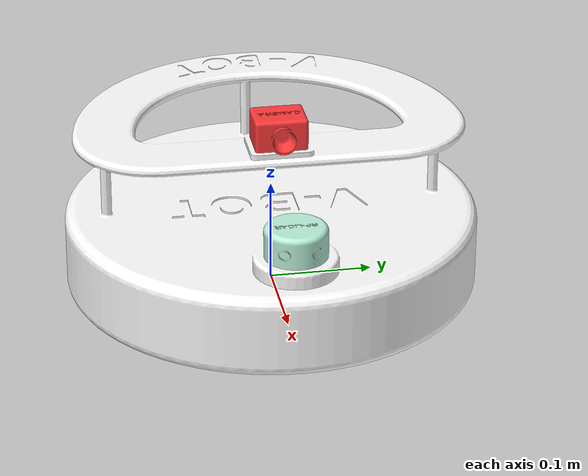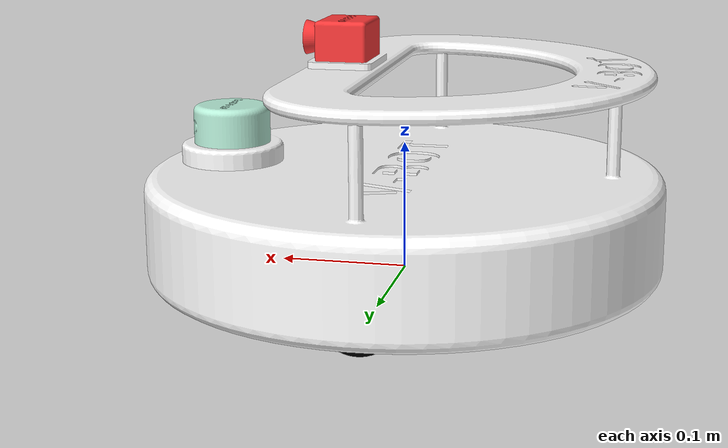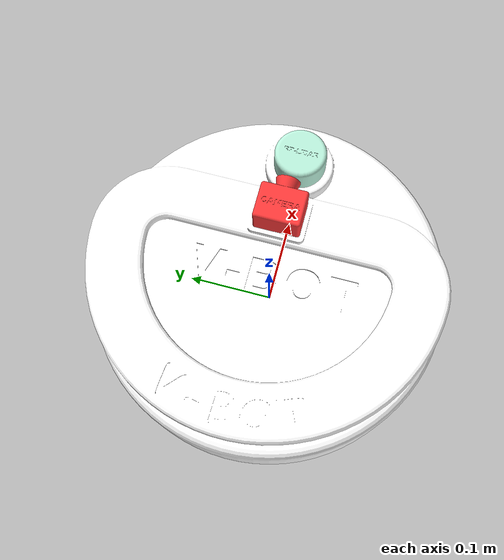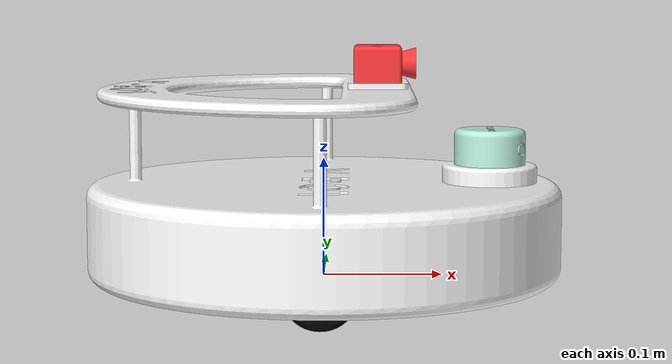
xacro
<?xml version="1.0" ?>
<robot name="v_bot_cleaner" xmlns:xacro="http://www.ros.org/wiki/xacro">

<xacro:include filename="$(find v_bot_cleaner_description)/urdf/materials.xacro" />
<xacro:include filename="$(find v_bot_cleaner_description)/urdf/v_bot_cleaner.trans" />
<xacro:include filename="$(find v_bot_cleaner_description)/urdf/v_bot_cleaner.gazebo" />
<link name="base_link">
  <inertial>
    <origin xyz="-0.0010529075795481706 3.250751684527489e-06 0.04653885044149195" rpy="0 0 0"/>
    <mass value="14.427997882439607"/>
    <inertia ixx="0.156211" iyy="0.163166" izz="0.286402" ixy="0.0" iyz="-3e-06" ixz="0.002573"/>
  </inertial>
  <visual>
    <origin xyz="0 0 0" rpy="0 0 0"/>
    <geometry>
      <mesh filename="file://$(find v_bot_cleaner_description)/meshes/base_link.stl" scale="0.001 0.001 0.001"/>
    </geometry>
    <material name="white"/>
  </visual>
  <collision>
    <origin xyz="0 0 0" rpy="0 0 0"/>
    <geometry>
      <mesh filename="file://$(find v_bot_cleaner_description)/meshes/base_link.stl" scale="0.001 0.001 0.001"/>
    </geometry>
  </collision>
</link>

<link name="right_wheel_1">
  <inertial>
    <origin xyz="5.927036639263861e-14 7.623066919371091e-08 -1.4852702401313422e-13" rpy="0 0 0"/>
    <mass value="0.09488179679651186"/>
    <inertia ixx="2.5e-05" iyy="4e-05" izz="2.5e-05" ixy="0.0" iyz="-0.0" ixz="-0.0"/>
  </inertial>
  <visual>
    <origin xyz="0.0 0.152679 -0.015" rpy="0 0 0"/>
    <geometry>
      <mesh filename="file://$(find v_bot_cleaner_description)/meshes/right_wheel_1.stl" scale="0.001 0.001 0.001"/>
    </geometry>
    <material name="black"/>
  </visual>
  <collision>
    <origin xyz="0.0 0.152679 -0.015" rpy="0 0 0"/>
    <geometry>
      <mesh filename="file://$(find v_bot_cleaner_description)/meshes/right_wheel_1.stl" scale="0.001 0.001 0.001"/>
    </geometry>
  </collision>
</link>

<link name="lidar_1">
  <inertial>
    <origin xyz="-0.00010010312107208708 3.920335264882301e-07 0.01482367548927023" rpy="0 0 0"/>
    <mass value="0.11006537353248454"/>
    <inertia ixx="3.3e-05" iyy="3.3e-05" izz="4.9e-05" ixy="0.0" iyz="-0.0" ixz="-0.0"/>
  </inertial>
  <visual>
    <origin xyz="-0.14 -0.0 -0.095" rpy="0 0 0"/>
    <geometry>
      <mesh filename="file://$(find v_bot_cleaner_description)/meshes/lidar_1.stl" scale="0.001 0.001 0.001"/>
    </geometry>
    <material name="light_green"/>
  </visual>
  <collision>
    <origin xyz="-0.14 -0.0 -0.095" rpy="0 0 0"/>
    <geometry>
      <mesh filename="file://$(find v_bot_cleaner_description)/meshes/lidar_1.stl" scale="0.001 0.001 0.001"/>
    </geometry>
  </collision>
</link>

<link name="left_wheel_1">
  <inertial>
    <origin xyz="-9.408696044488352e-14 -7.623068071227479e-08 1.2913281555171352e-13" rpy="0 0 0"/>
    <mass value="0.09488179679651186"/>
    <inertia ixx="2.5e-05" iyy="4e-05" izz="2.5e-05" ixy="-0.0" iyz="0.0" ixz="-0.0"/>
  </inertial>
  <visual>
    <origin xyz="0.0 -0.152679 -0.015" rpy="0 0 0"/>
    <geometry>
      <mesh filename="file://$(find v_bot_cleaner_description)/meshes/left_wheel_1.stl" scale="0.001 0.001 0.001"/>
    </geometry>
    <material name="black"/>
  </visual>
  <collision>
    <origin xyz="0.0 -0.152679 -0.015" rpy="0 0 0"/>
    <geometry>
      <mesh filename="file://$(find v_bot_cleaner_description)/meshes/left_wheel_1.stl" scale="0.001 0.001 0.001"/>
    </geometry>
  </collision>
</link>

<link name="camera_1">
  <inertial>
    <origin xyz="0.0007281929505995738 2.0402133576155774e-07 0.014893158996248407" rpy="0 0 0"/>
    <mass value="0.08053770367996724"/>
    <inertia ixx="2.2e-05" iyy="1.8e-05" izz="2.8e-05" ixy="0.0" iyz="-0.0" ixz="-0.0"/>
  </inertial>
  <visual>
    <origin xyz="-0.045 -0.0 -0.165" rpy="0 0 0"/>
    <geometry>
      <mesh filename="file://$(find v_bot_cleaner_description)/meshes/camera_1.stl" scale="0.001 0.001 0.001"/>
    </geometry>
    <material name="red"/>
  </visual>
  <collision>
    <origin xyz="-0.045 -0.0 -0.165" rpy="0 0 0"/>
    <geometry>
      <mesh filename="file://$(find v_bot_cleaner_description)/meshes/camera_1.stl" scale="0.001 0.001 0.001"/>
    </geometry>
  </collision>
</link>

<joint name="right_wh_joint" type="continuous">
  <origin xyz="0.0 -0.152679 0.015" rpy="0 0 0"/>
  <parent link="base_link"/>
  <child link="right_wheel_1"/>
  <axis xyz="0.0 1.0 0.0"/>
</joint>

<joint name="lidar" type="fixed">
  <origin xyz="0.14 0.0 0.095" rpy="0 0 0"/>
  <parent link="base_link"/>
  <child link="lidar_1"/>
</joint>

<joint name="left_wh_joint" type="continuous">
  <origin xyz="0.0 0.152679 0.015" rpy="0 0 0"/>
  <parent link="base_link"/>
  <child link="left_wheel_1"/>
  <axis xyz="0.0 1.0 0.0"/>
</joint>

<joint name="camera_joint" type="fixed">
  <origin xyz="0.045 0.0 0.165" rpy="0 0 0"/>
  <parent link="base_link"/>
  <child link="camera_1"/>
</joint>

</robot>

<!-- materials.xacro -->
<robot name="v_bot_cleaner" xmlns:xacro="http://www.ros.org/wiki/xacro" >

<material name="silver">
  <color rgba="0.700 0.700 0.700 1.000"/>
</material>

<material name="black">
  <color rgba="0 0 0 1"/>
  <!-- red green blue transprency -->
</material>

<material name = "white">
  <color rgba="1 1 1 1"/>
</material>

<material name = "light_green">
  <color rgba="0.725 0.941 0.855 1"/>
</material>

<material name= "red">
  <color rgba="1 0.224 0.224 1"/>
</material>
</robot>

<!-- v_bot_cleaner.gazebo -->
<robot name="v_bot_cleaner" xmlns:xacro="http://www.ros.org/wiki/xacro">

  <xacro:property name="silver_col" value="Gazebo/Silver" />
  <xacro:property name="black_col" value="Gazebo/Black" />
  <xacro:property name="green_col" value="Gazebo/Green" />
  <xacro:property name="red_col" value="Gazebo/Red" />

  <!-- diffrential drive -->

  <gazebo>
    <plugin name="control" filename="libgazebo_ros_control.so" />
  </gazebo>
  <gazebo reference="base_link">
    <material>${silver_col}</material>
    <mu1>0.2</mu1>
    <mu2>0.2</mu2>
    <self_collide>true</self_collide>
    <gravity>true</gravity>
  </gazebo>

  <gazebo reference="right_wheel_1">
    <material>${black_col}</material>
    <mu1>0.2</mu1>
    <mu2>0.2</mu2>
    <self_collide>true</self_collide>
  </gazebo>

  <gazebo reference="lidar_1">
    <material>${green_col}</material>
    <mu1>0.2</mu1>
    <mu2>0.2</mu2>
    <self_collide>true</self_collide>
  </gazebo>

  <gazebo reference="left_wheel_1">
    <material>${black_col}</material>
    <mu1>0.2</mu1>
    <mu2>0.2</mu2>
    <self_collide>true</self_collide>
  </gazebo>

  <gazebo reference="camera_1">
    <material>${red_col}</material>
    <mu1>0.2</mu1>
    <mu2>0.2</mu2>
    <self_collide>true</self_collide>
  </gazebo>

  <!-- Differential drive plugin for gazebo -->

  <gazebo>
    <plugin name='diff_drive' filename='libgazebo_ros_diff_drive.so'>
      <ros>

      </ros>

      <left_joint>left_wh_joint</left_joint>
      <right_joint>right_wh_joint</right_joint>

      <wheel_separation>0.340</wheel_separation>
      <wheel_diameter>0.030</wheel_diameter>

      <max_wheel_torque>20</max_wheel_torque>
      <max_wheel_acceleration>1.0</max_wheel_acceleration>

      <publish_odom>true</publish_odom>
      <publish_odom_tf>false</publish_odom_tf>
      <publish_wheel_tf>false</publish_wheel_tf>

      <odometry_frame>odom</odometry_frame>
      <robot_base_frame>base_link</robot_base_frame>
    </plugin>
  </gazebo>

  <!-- ############## Omnidirectional/Mechanum drive plugin ############## -->

  <!--  ##########  LIDAR PLUGIN  ##########  -->

  <gazebo reference="lidar_1">
    <sensor name="ydlidar" type="ray">
      <always_on>true</always_on>
      <visualize>true</visualize>
      <update_rate>10</update_rate>
      <ray>
        <scan>
          <horizontal>
            <samples>720</samples>
            <resolution>1.000000</resolution>
            <min_angle>0.000000</min_angle>
            <max_angle>6.280000</max_angle>
          </horizontal>
        </scan>
        <range>
          <min>0.31</min>
          <max>20.0</max>
          <resolution>0.015000</resolution>
        </range>
        <noise>
          <type>gaussian</type>
          <mean>0.0</mean>
          <stddev>0.01</stddev>
        </noise>
      </ray>
      <plugin name="scan" filename="libgazebo_ros_ray_sensor.so">
        <ros>
          <remapping>~/out:=scan</remapping>
        </ros>
        <output_type>sensor_msgs/LaserScan</output_type>
        <frame_name>lidar_1</frame_name>
      </plugin>
    </sensor>
  </gazebo>

  <!--  ##########  CAMERA PLUGIN  ##########  -->

  <gazebo reference="camera_1">
    <sensor type="camera" name="camera">
      <update_rate>30.0</update_rate>
      <camera name="head">
        <horizontal_fov>1.3962634</horizontal_fov>
        <image>
          <width>800</width>
          <height>800</height>
          <format>R8G8B8</format>
        </image>
        <clip>
          <near>0.02</near>
          <far>300</far>
        </clip>
        <noise>
          <type>gaussian</type>
          <!-- Noise is sampled independently per pixel on each frame.
               That pixel's noise value is added to each of its color
               channels, which at that point lie in the range [0,1]. -->
          <mean>0.0</mean>
          <stddev>0.007</stddev>
        </noise>
      </camera>
      <plugin name="camera_controller" filename="libgazebo_ros_camera.so">
        <alwaysOn>true</alwaysOn>
        <updateRate>0.0</updateRate>
        <cameraName>camera</cameraName>
        <imageTopicName>image_raw</imageTopicName>
        <cameraInfoTopicName>camera_info</cameraInfoTopicName>
        <frameName>camera_1</frameName>
        <hackBaseline>0.07</hackBaseline>
        <distortionK1>0.0</distortionK1>
        <distortionK2>0.0</distortionK2>
        <distortionK3>0.0</distortionK3>
        <distortionT1>0.0</distortionT1>
        <distortionT2>0.0</distortionT2>
      </plugin>
    </sensor>
  </gazebo>

</robot>
